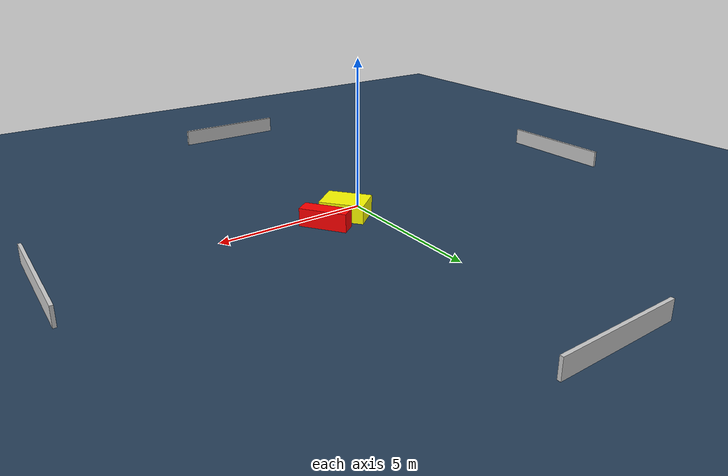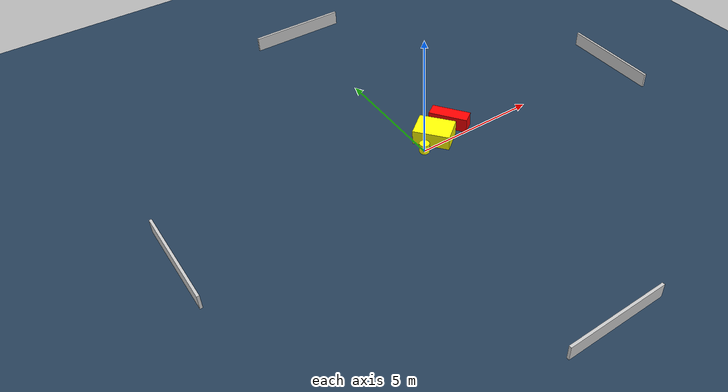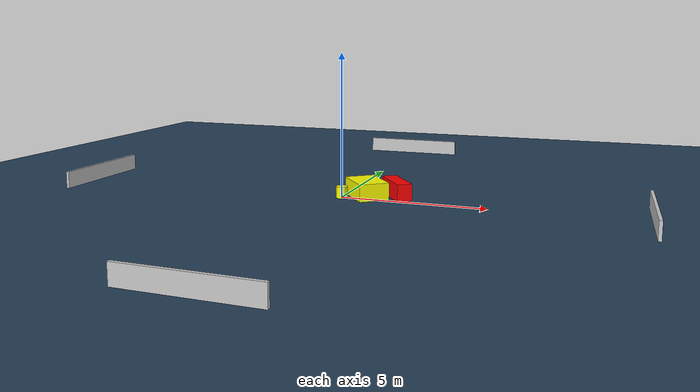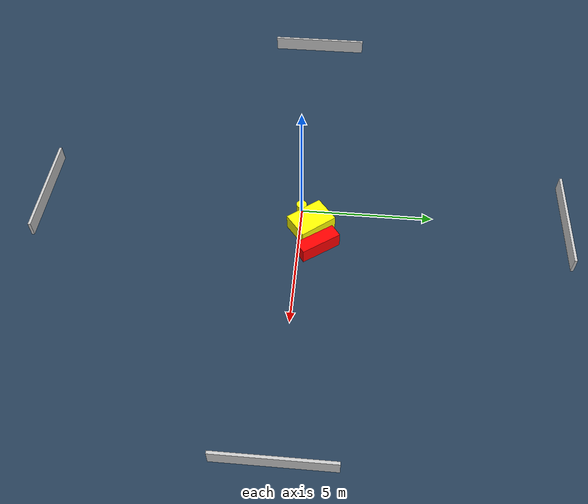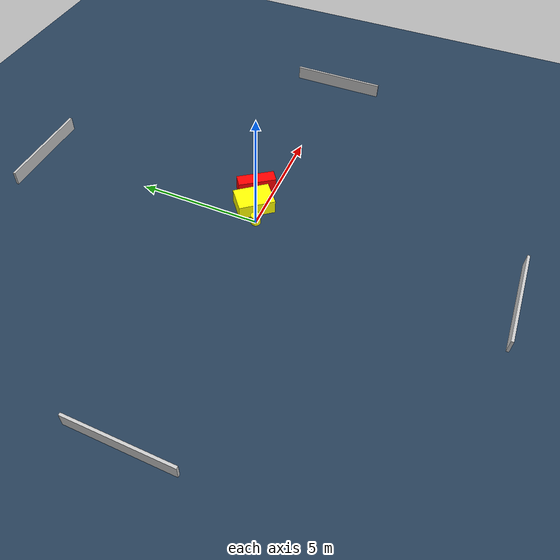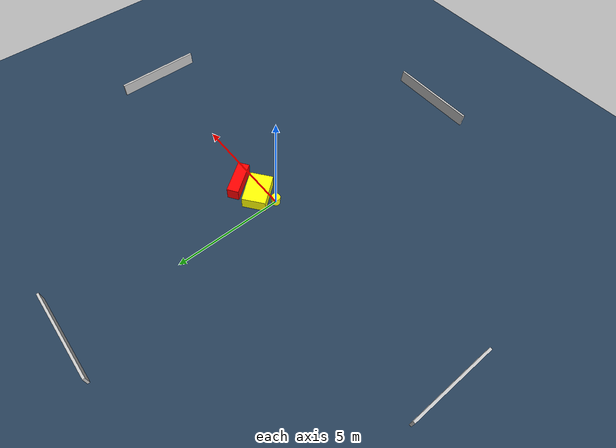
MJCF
<?xml version="1.0" ?>
<mujoco model="generated_environment">
  <option timestep="0.01" integrator="RK4" cone="elliptic"/>
  <default>
    <geom density="1"/>
  </default>
  <asset>
    <texture builtin="gradient" height="3072" name="skybox" rgb1="0.3 0.5 0.7" rgb2="0 0 0" type="skybox" width="512"/>
    <texture builtin="checker" height="300" name="groundplane" rgb1="0.2 0.3 0.4" rgb2="0.1 0.2 0.3" type="2d" width="300"/>
    <material name="groundplane" reflectance="0.2" texrepeat="5 5" texture="groundplane"/>
  </asset>
  <worldbody>
    <light dir="0 0 -1" directional="true" pos="0 0 1.5"/>
    <geom condim="3" friction="0.5 0.005 0.001" material="groundplane" name="floor" pos="0 0 0" size="0 0 0.05" type="plane"/>
    <body name="walls">
      <geom name="wall_1" condim="4" pos="-10.0 0.0 0.3" rgba="0.800000011920929 0.800000011920929 0.800000011920929 1.0" size="0.05 2.0 0.3" type="box"/>
      <geom name="wall_2" condim="4" pos="10.0 0.0 0.3" rgba="0.800000011920929 0.800000011920929 0.800000011920929 1.0" size="0.05 2.0 0.3" type="box"/>
      <geom name="wall_3" condim="4" pos="0.0 -10.0 0.3" rgba="0.800000011920929 0.800000011920929 0.800000011920929 1.0" size="2.0 0.05 0.3" type="box"/>
      <geom name="wall_4" condim="4" pos="0.0 10.0 0.3" rgba="0.800000011920929 0.800000011920929 0.800000011920929 1.0" size="2.0 0.05 0.3" type="box"/>
    </body>
    <body name="robot">
      <joint name="joint_x" type="slide" pos="0 0 0" axis="1 0 0"/>
      <joint name="joint_y" type="slide" pos="0 0 0" axis="0 1 0"/>
      <geom name="robot" type="cylinder" pos="0.0 0.0 0.2" size="0.2 0.2 0.0" mass="5.0" friction="1.0 0.005 0.0001" condim="4" rgba="1.0 1.0 0.0 1.0"/>
    </body>
    <body name="obstacle_1_movable">
      <geom name="obstacle_1_movable" condim="4" pos="0.7676338369978664 0.41407022026063306 0.3" euler="0 0 128.77667700145153" friction="0.0 0.005 0.001" rgba="1.0 1.0 0.0 1.0" size="0.7358656278138889 0.5308617799660227 0.3" type="box" mass="0.1"/>
      <joint type="free"/>
    </body>
    <body name="obstacle_2_static">
      <geom name="obstacle_2_static" condim="4" pos="1.7596123983917318 0.7462144091230173 0.3" euler="0 0 305.5759038315102" friction="0.0 0.005 0.001" rgba="1.0 0.0 0.0 1.0" size="0.7795717457218285 0.26277578393009543 0.3" type="box"/>
    </body>
  </worldbody>
  <actuator>
    <motor name="actuator_x" joint="joint_x" gear="1" ctrlrange="-1 1"/>
    <motor name="actuator_y" joint="joint_y" gear="1" ctrlrange="-1 1"/>
  </actuator>
</mujoco>
